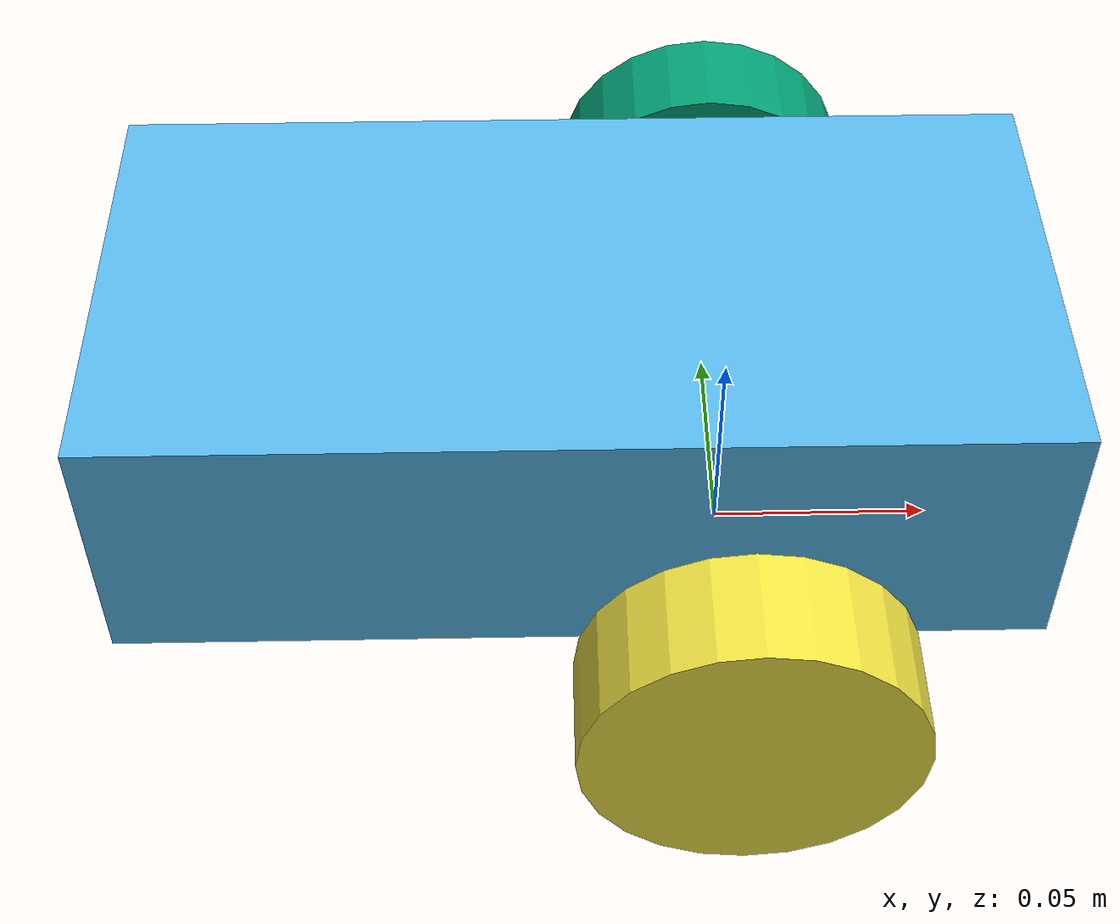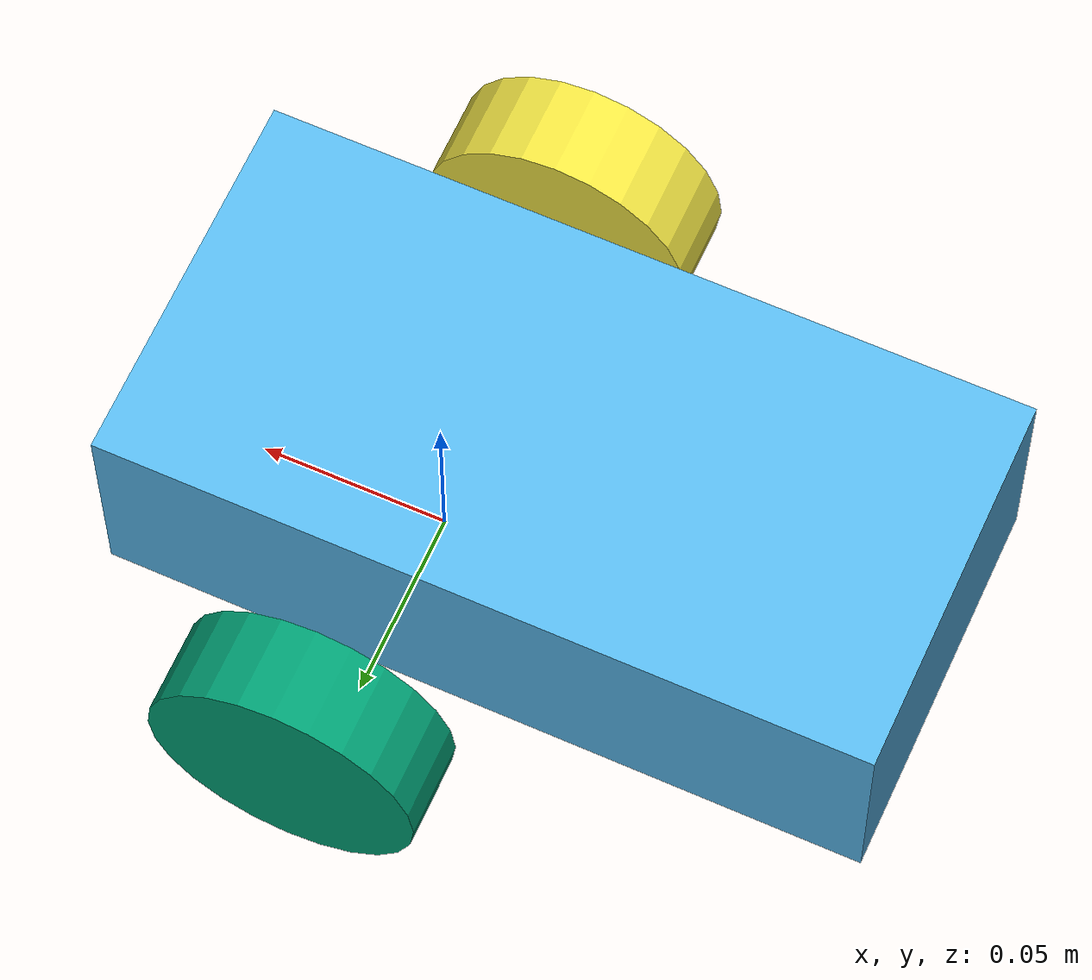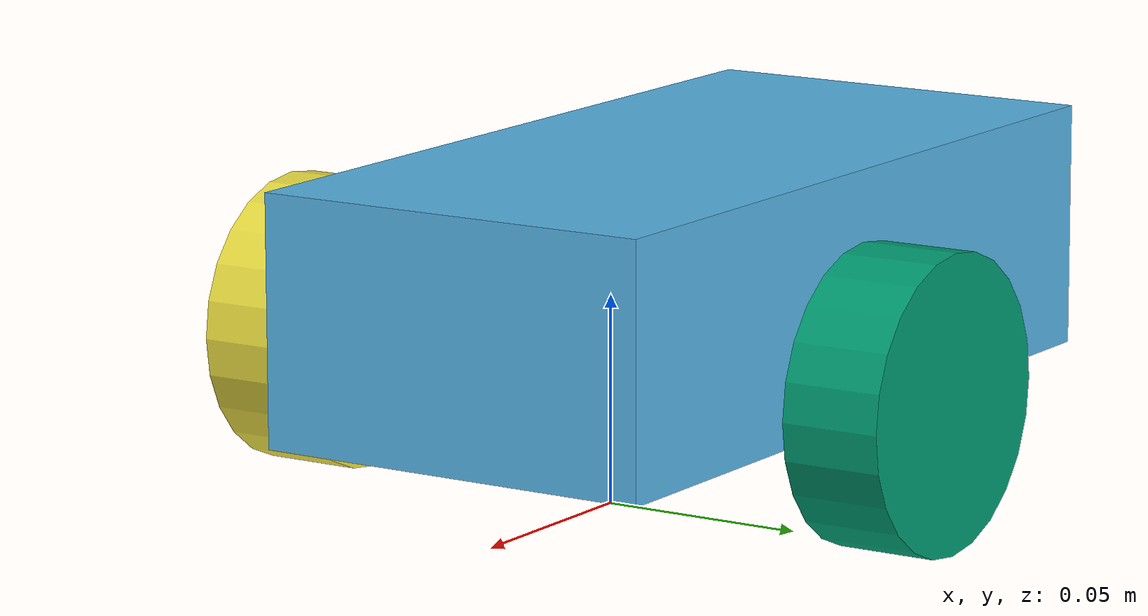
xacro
<?xml version="1.0"?>
<robot name="the_simplest_diffbot" xmlns:xacro="http://ros.org/wiki/xacro">

  <xacro:include filename="$(find basic_diffbot)/urdf/the_simplest_diffbot_gz.xacro"/>

  <link name="base_footprint"/>

  <joint name="base_joint" type="fixed">
    <parent link="base_footprint"/>
    <child link="base_link"/>
    <origin xyz="0 0 0.01" rpy="0 0 0"/>
  </joint>

  <link name="base_link"> <!-- Important: Every visual, collision and inertial tag has its own origin -->
    <visual>
      <origin xyz="-0.033 0.0 0.04" rpy="0 0 0"/>
      <geometry>
        <box size="0.2 0.1 0.06"/>
      </geometry>
    </visual>
    <collision>
      <origin xyz="-0.033 0 0.04" rpy="0 0 0"/>
      <geometry>
        <box size="0.2 0.1 0.06"/>
      </geometry>
    </collision>
    <inertial>
      <origin xyz="0 0 0.06" rpy="0 0 0"/>
      <mass value="10"/>
      <inertia ixx="0.333333" ixy="0.0" ixz="0.0"  iyy="0.333333" iyz="0.0"  izz="0.6" />
    </inertial>
  </link>

  <!-- Wheels definition (joints and links) -->
  <joint name="wheel_left_joint" type="continuous">
    <parent link="base_link"/>
    <child link="wheel_left_link"/>
    <origin xyz="0 0.065 0.025" rpy="-1.57 0 0"/> <!-- in rad -->
    <axis xyz="0 0 1"/>
  </joint>

  <link name="wheel_left_link">
    <visual>
      <origin xyz="0 0 0.015" rpy="0 0 0"/>
      <geometry>
        <cylinder length="0.024" radius="0.035"/>
      </geometry>
    </visual>
    <collision>
      <origin xyz="0 0 0" rpy="0 0 0"/>
      <geometry>
        <cylinder length="0.024" radius="0.035"/>
      </geometry>
    </collision>
    <inertial>
      <origin xyz="0 0 0" />
      <mass value="5" />
      <inertia ixx="0.0135417" ixy="0.0" ixz="0.0"  iyy="0.0135417" iyz="0.0"  izz="0.025" />
      </inertial>
  </link>

  <joint name="wheel_right_joint" type="continuous">
    <parent link="base_link"/>
    <child link="wheel_right_link"/>
    <origin xyz="0 -0.065 0.025" rpy="-1.57 0 0"/>
    <axis xyz="0 0 1"/>
  </joint>

  <link name="wheel_right_link">
    <visual>
      <origin xyz="0 0 -0.015" rpy="0 0 0"/>
      <geometry>
        <cylinder length="0.024" radius="0.035"/>
      </geometry>
    </visual>
    <collision>
      <origin xyz="0 0 0" rpy="0 0 0"/>
      <geometry>
        <cylinder length="0.024" radius="0.035"/>
      </geometry>
    </collision>
    <inertial>
      <origin xyz="0 0 0" />
      <mass value="5" />
      <inertia ixx="0.0135417" ixy="0.0" ixz="0.0"  iyy="0.0135417" iyz="0.0"  izz="0.025" />
    </inertial>
  </link>

  <!-- Caster wheel definition (joint and link) -->
  <joint name="caster_base_joint" type="fixed">
    <origin xyz="-0.1 0 0.001" rpy="0 0 0" /> <!-- a small vertical offset is required -->
    <parent link="base_link" />
    <child link="caster_base_link" />
  </joint>

  <link name="caster_base_link">
    <visual>
      <origin xyz="0 0 0" rpy="0 0 0" />
      <geometry>
        <sphere radius="0.01"/>
      </geometry>
    </visual>
    <collision>
      <origin xyz="0 0 0" rpy="0 0 0"/>
      <geometry>
        <sphere radius="0.01"/>
      </geometry>
    </collision>
    <collision>
      <origin xyz="0.17 0 0" rpy="0 0 0"/>
      <geometry>
        <sphere radius="0.01"/>
      </geometry>
    </collision>
    <!-- Inertial tag is optional for this case -->
  </link>

</robot>
